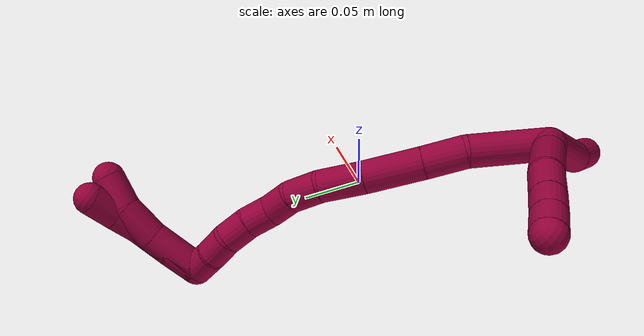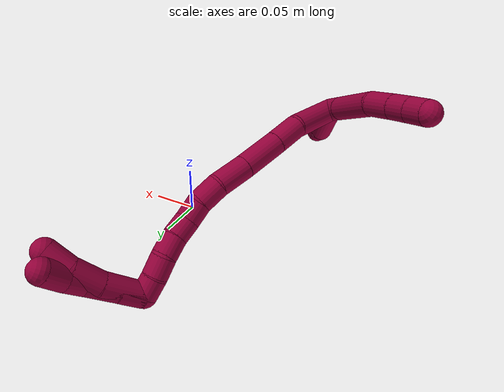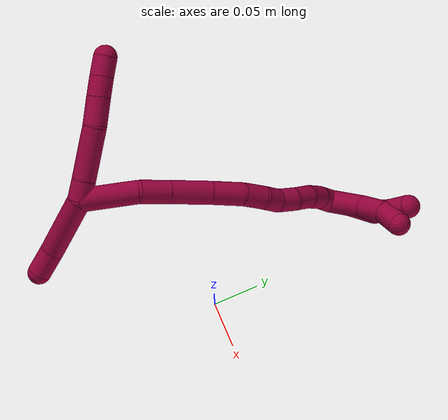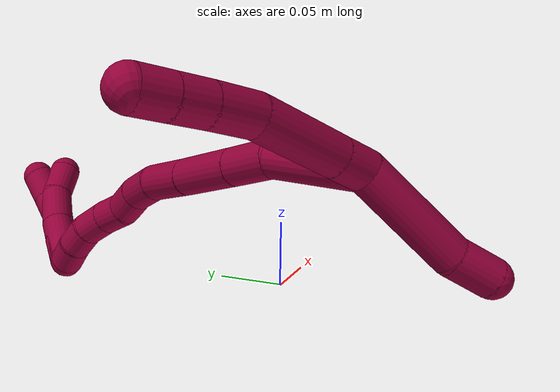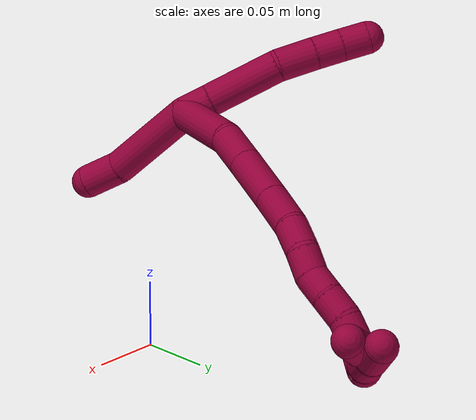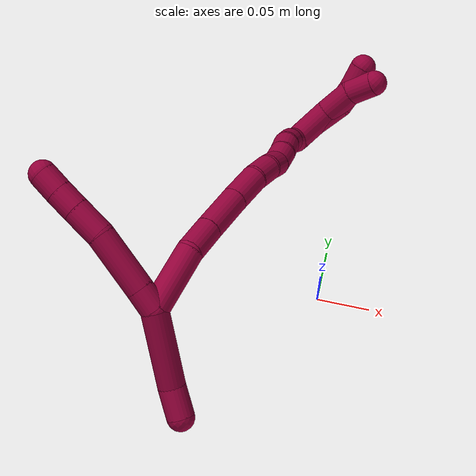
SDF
<sdf version="1.7">
 <world name="default">
  <model name="8">
   <static>0</static>
   <link name="8">
    <collision name="collision-cylinder-e_1_2_8">
     <pose>0.010682 -0.000133 -0.00217 3.08028 1.37004 3.06656</pose>
     <geometry><cylinder><radius>0.0125</radius><length>0.021802</length></cylinder></geometry>
     <surface>
      <friction><ode><mu>1.16</mu><mu2>1.16</mu2><slip1>0</slip1><slip2>0</slip2></ode></friction>
      <contact><ode><kp>1e+06</kp><kd>1</kd><max_vel>0</max_vel><min_depth>0.001</min_depth></ode></contact>
     </surface>
    </collision>
    <visual name="visual-cylinder-e_1_2_8">
     <pose>0.010682 -0.000133 -0.00217 3.08028 1.37004 3.06656</pose>
     <geometry><cylinder><radius>0.0125</radius><length>0.021802</length></cylinder></geometry>
     <material><ambient>0.584314 0 0.227451 1</ambient></material>
    </visual>
    <collision name="collision-cylinder-e_2_8_9">
     <pose>0.049019 -0.000939 -0.009499 3.01205 1.38482 2.9855</pose>
     <geometry><cylinder><radius>0.0125</radius><length>0.05628</length></cylinder></geometry>
     <surface>
      <friction><ode><mu>1.16</mu><mu2>1.16</mu2><slip1>0</slip1><slip2>0</slip2></ode></friction>
      <contact><ode><kp>1e+06</kp><kd>1</kd><max_vel>0</max_vel><min_depth>0.001</min_depth></ode></contact>
     </surface>
    </collision>
    <visual name="visual-cylinder-e_2_8_9">
     <pose>0.049019 -0.000939 -0.009499 3.01205 1.38482 2.9855</pose>
     <geometry><cylinder><radius>0.0125</radius><length>0.05628</length></cylinder></geometry>
     <material><ambient>0.584314 0 0.227451 1</ambient></material>
    </visual>
    <collision name="collision-cylinder-e_3_9_10">
     <pose>0.091424 -0.000273 -0.014467 -1.42828 1.47944 -1.33844</pose>
     <geometry><cylinder><radius>0.0125</radius><length>0.029624</length></cylinder></geometry>
     <surface>
      <friction><ode><mu>1.16</mu><mu2>1.16</mu2><slip1>0</slip1><slip2>0</slip2></ode></friction>
      <contact><ode><kp>1e+06</kp><kd>1</kd><max_vel>0</max_vel><min_depth>0.001</min_depth></ode></contact>
     </surface>
    </collision>
    <visual name="visual-cylinder-e_3_9_10">
     <pose>0.091424 -0.000273 -0.014467 -1.42828 1.47944 -1.33844</pose>
     <geometry><cylinder><radius>0.0125</radius><length>0.029624</length></cylinder></geometry>
     <material><ambient>0.584314 0 0.227451 1</ambient></material>
    </visual>
    <collision name="collision-cylinder-e_4_10_11">
     <pose>0.116764 0.002282 -0.014126 -1.44899 1.45551 -1.33536</pose>
     <geometry><cylinder><radius>0.0125</radius><length>0.021321</length></cylinder></geometry>
     <surface>
      <friction><ode><mu>1.16</mu><mu2>1.16</mu2><slip1>0</slip1><slip2>0</slip2></ode></friction>
      <contact><ode><kp>1e+06</kp><kd>1</kd><max_vel>0</max_vel><min_depth>0.001</min_depth></ode></contact>
     </surface>
    </collision>
    <visual name="visual-cylinder-e_4_10_11">
     <pose>0.116764 0.002282 -0.014126 -1.44899 1.45551 -1.33536</pose>
     <geometry><cylinder><radius>0.0125</radius><length>0.021321</length></cylinder></geometry>
     <material><ambient>0.584314 0 0.227451 1</ambient></material>
    </visual>
    <collision name="collision-cylinder-e_5_11_6">
     <pose>0.137749 0.004871 -0.014117 -1.67216 1.43885 -1.54001</pose>
     <geometry><cylinder><radius>0.0125</radius><length>0.020972</length></cylinder></geometry>
     <surface>
      <friction><ode><mu>1.16</mu><mu2>1.16</mu2><slip1>0</slip1><slip2>0</slip2></ode></friction>
      <contact><ode><kp>1e+06</kp><kd>1</kd><max_vel>0</max_vel><min_depth>0.001</min_depth></ode></contact>
     </surface>
    </collision>
    <visual name="visual-cylinder-e_5_11_6">
     <pose>0.137749 0.004871 -0.014117 -1.67216 1.43885 -1.54001</pose>
     <geometry><cylinder><radius>0.0125</radius><length>0.020972</length></cylinder></geometry>
     <material><ambient>0.584314 0 0.227451 1</ambient></material>
    </visual>
    <collision name="collision-cylinder-e_1_2_12">
     <pose>-0.028263 0.004897 0.021272 -0.226267 -0.913152 0.111501</pose>
     <geometry><cylinder><radius>0.0125</radius><length>0.071421</length></cylinder></geometry>
     <surface>
      <friction><ode><mu>1.16</mu><mu2>1.16</mu2><slip1>0</slip1><slip2>0</slip2></ode></friction>
      <contact><ode><kp>1e+06</kp><kd>1</kd><max_vel>0</max_vel><min_depth>0.001</min_depth></ode></contact>
     </surface>
    </collision>
    <visual name="visual-cylinder-e_1_2_12">
     <pose>-0.028263 0.004897 0.021272 -0.226267 -0.913152 0.111501</pose>
     <geometry><cylinder><radius>0.0125</radius><length>0.071421</length></cylinder></geometry>
     <material><ambient>0.584314 0 0.227451 1</ambient></material>
    </visual>
    <collision name="collision-cylinder-e_2_12_5">
     <pose>-0.068914 0.008677 0.049577 0.157482 -1.0491 -0.091248</pose>
     <geometry><cylinder><radius>0.0125</radius><length>0.028579</length></cylinder></geometry>
     <surface>
      <friction><ode><mu>1.16</mu><mu2>1.16</mu2><slip1>0</slip1><slip2>0</slip2></ode></friction>
      <contact><ode><kp>1e+06</kp><kd>1</kd><max_vel>0</max_vel><min_depth>0.001</min_depth></ode></contact>
     </surface>
    </collision>
    <visual name="visual-cylinder-e_2_12_5">
     <pose>-0.068914 0.008677 0.049577 0.157482 -1.0491 -0.091248</pose>
     <geometry><cylinder><radius>0.0125</radius><length>0.028579</length></cylinder></geometry>
     <material><ambient>0.584314 0 0.227451 1</ambient></material>
    </visual>
    <collision name="collision-cylinder-e_1_2_13">
     <pose>0.006861 0.019594 -0.023093 -2.43797 0.222786 -0.591555</pose>
     <geometry><cylinder><radius>0.0125</radius><length>0.062106</length></cylinder></geometry>
     <surface>
      <friction><ode><mu>1.16</mu><mu2>1.16</mu2><slip1>0</slip1><slip2>0</slip2></ode></friction>
      <contact><ode><kp>1e+06</kp><kd>1</kd><max_vel>0</max_vel><min_depth>0.001</min_depth></ode></contact>
     </surface>
    </collision>
    <visual name="visual-cylinder-e_1_2_13">
     <pose>0.006861 0.019594 -0.023093 -2.43797 0.222786 -0.591555</pose>
     <geometry><cylinder><radius>0.0125</radius><length>0.062106</length></cylinder></geometry>
     <material><ambient>0.584314 0 0.227451 1</ambient></material>
    </visual>
    <collision name="collision-cylinder-e_2_13_14">
     <pose>0.014811 0.052238 -0.055336 -2.18232 0.068192 -0.130964</pose>
     <geometry><cylinder><radius>0.0125</radius><length>0.03195</length></cylinder></geometry>
     <surface>
      <friction><ode><mu>1.16</mu><mu2>1.16</mu2><slip1>0</slip1><slip2>0</slip2></ode></friction>
      <contact><ode><kp>1e+06</kp><kd>1</kd><max_vel>0</max_vel><min_depth>0.001</min_depth></ode></contact>
     </surface>
    </collision>
    <visual name="visual-cylinder-e_2_13_14">
     <pose>0.014811 0.052238 -0.055336 -2.18232 0.068192 -0.130964</pose>
     <geometry><cylinder><radius>0.0125</radius><length>0.03195</length></cylinder></geometry>
     <material><ambient>0.584314 0 0.227451 1</ambient></material>
    </visual>
    <collision name="collision-cylinder-e_3_14_15">
     <pose>0.017088 0.083439 -0.077612 -2.19687 0.053025 -0.103711</pose>
     <geometry><cylinder><radius>0.0125</radius><length>0.044863</length></cylinder></geometry>
     <surface>
      <friction><ode><mu>1.16</mu><mu2>1.16</mu2><slip1>0</slip1><slip2>0</slip2></ode></friction>
      <contact><ode><kp>1e+06</kp><kd>1</kd><max_vel>0</max_vel><min_depth>0.001</min_depth></ode></contact>
     </surface>
    </collision>
    <visual name="visual-cylinder-e_3_14_15">
     <pose>0.017088 0.083439 -0.077612 -2.19687 0.053025 -0.103711</pose>
     <geometry><cylinder><radius>0.0125</radius><length>0.044863</length></cylinder></geometry>
     <material><ambient>0.584314 0 0.227451 1</ambient></material>
    </visual>
    <collision name="collision-cylinder-e_4_15_16">
     <pose>0.018775 0.115132 -0.101228 -2.22989 0.02908 -0.059298</pose>
     <geometry><cylinder><radius>0.0125</radius><length>0.034273</length></cylinder></geometry>
     <surface>
      <friction><ode><mu>1.16</mu><mu2>1.16</mu2><slip1>0</slip1><slip2>0</slip2></ode></friction>
      <contact><ode><kp>1e+06</kp><kd>1</kd><max_vel>0</max_vel><min_depth>0.001</min_depth></ode></contact>
     </surface>
    </collision>
    <visual name="visual-cylinder-e_4_15_16">
     <pose>0.018775 0.115132 -0.101228 -2.22989 0.02908 -0.059298</pose>
     <geometry><cylinder><radius>0.0125</radius><length>0.034273</length></cylinder></geometry>
     <material><ambient>0.584314 0 0.227451 1</ambient></material>
    </visual>
    <collision name="collision-cylinder-e_5_16_17">
     <pose>0.018255 0.139647 -0.11718 -2.03266 -0.082917 0.133771</pose>
     <geometry><cylinder><radius>0.0125</radius><length>0.0246</length></cylinder></geometry>
     <surface>
      <friction><ode><mu>1.16</mu><mu2>1.16</mu2><slip1>0</slip1><slip2>0</slip2></ode></friction>
      <contact><ode><kp>1e+06</kp><kd>1</kd><max_vel>0</max_vel><min_depth>0.001</min_depth></ode></contact>
     </surface>
    </collision>
    <visual name="visual-cylinder-e_5_16_17">
     <pose>0.018255 0.139647 -0.11718 -2.03266 -0.082917 0.133771</pose>
     <geometry><cylinder><radius>0.0125</radius><length>0.0246</length></cylinder></geometry>
     <material><ambient>0.584314 0 0.227451 1</ambient></material>
    </visual>
    <collision name="collision-cylinder-e_6_17_18">
     <pose>0.016043 0.160697 -0.124646 -1.76713 -0.115616 0.1408</pose>
     <geometry><cylinder><radius>0.0125</radius><length>0.020686</length></cylinder></geometry>
     <surface>
      <friction><ode><mu>1.16</mu><mu2>1.16</mu2><slip1>0</slip1><slip2>0</slip2></ode></friction>
      <contact><ode><kp>1e+06</kp><kd>1</kd><max_vel>0</max_vel><min_depth>0.001</min_depth></ode></contact>
     </surface>
    </collision>
    <visual name="visual-cylinder-e_6_17_18">
     <pose>0.016043 0.160697 -0.124646 -1.76713 -0.115616 0.1408</pose>
     <geometry><cylinder><radius>0.0125</radius><length>0.020686</length></cylinder></geometry>
     <material><ambient>0.584314 0 0.227451 1</ambient></material>
    </visual>
    <collision name="collision-cylinder-e_7_18_19">
     <pose>0.016258 0.180198 -0.130532 -1.96151 0.137306 -0.204657</pose>
     <geometry><cylinder><radius>0.0125</radius><length>0.020577</length></cylinder></geometry>
     <surface>
      <friction><ode><mu>1.16</mu><mu2>1.16</mu2><slip1>0</slip1><slip2>0</slip2></ode></friction>
      <contact><ode><kp>1e+06</kp><kd>1</kd><max_vel>0</max_vel><min_depth>0.001</min_depth></ode></contact>
     </surface>
    </collision>
    <visual name="visual-cylinder-e_7_18_19">
     <pose>0.016258 0.180198 -0.130532 -1.96151 0.137306 -0.204657</pose>
     <geometry><cylinder><radius>0.0125</radius><length>0.020577</length></cylinder></geometry>
     <material><ambient>0.584314 0 0.227451 1</ambient></material>
    </visual>
    <collision name="collision-cylinder-e_8_19_20">
     <pose>0.019466 0.199633 -0.136844 -1.80894 0.172936 -0.219603</pose>
     <geometry><cylinder><radius>0.0125</radius><length>0.020916</length></cylinder></geometry>
     <surface>
      <friction><ode><mu>1.16</mu><mu2>1.16</mu2><slip1>0</slip1><slip2>0</slip2></ode></friction>
      <contact><ode><kp>1e+06</kp><kd>1</kd><max_vel>0</max_vel><min_depth>0.001</min_depth></ode></contact>
     </surface>
    </collision>
    <visual name="visual-cylinder-e_8_19_20">
     <pose>0.019466 0.199633 -0.136844 -1.80894 0.172936 -0.219603</pose>
     <geometry><cylinder><radius>0.0125</radius><length>0.020916</length></cylinder></geometry>
     <material><ambient>0.584314 0 0.227451 1</ambient></material>
    </visual>
    <collision name="collision-cylinder-e_9_20_21">
     <pose>0.021135 0.219634 -0.13985 -1.62841 -0.012993 0.013764</pose>
     <geometry><cylinder><radius>0.0125</radius><length>0.020014</length></cylinder></geometry>
     <surface>
      <friction><ode><mu>1.16</mu><mu2>1.16</mu2><slip1>0</slip1><slip2>0</slip2></ode></friction>
      <contact><ode><kp>1e+06</kp><kd>1</kd><max_vel>0</max_vel><min_depth>0.001</min_depth></ode></contact>
     </surface>
    </collision>
    <visual name="visual-cylinder-e_9_20_21">
     <pose>0.021135 0.219634 -0.13985 -1.62841 -0.012993 0.013764</pose>
     <geometry><cylinder><radius>0.0125</radius><length>0.020014</length></cylinder></geometry>
     <material><ambient>0.584314 0 0.227451 1</ambient></material>
    </visual>
    <collision name="collision-cylinder-e_10_21_1">
     <pose>0.019302 0.239466 -0.14102 -1.63102 -0.171097 0.181668</pose>
     <geometry><cylinder><radius>0.0125</radius><length>0.020014</length></cylinder></geometry>
     <surface>
      <friction><ode><mu>1.16</mu><mu2>1.16</mu2><slip1>0</slip1><slip2>0</slip2></ode></friction>
      <contact><ode><kp>1e+06</kp><kd>1</kd><max_vel>0</max_vel><min_depth>0.001</min_depth></ode></contact>
     </surface>
    </collision>
    <visual name="visual-cylinder-e_10_21_1">
     <pose>0.019302 0.239466 -0.14102 -1.63102 -0.171097 0.181668</pose>
     <geometry><cylinder><radius>0.0125</radius><length>0.020014</length></cylinder></geometry>
     <material><ambient>0.584314 0 0.227451 1</ambient></material>
    </visual>
    <collision name="collision-cylinder-e_1_1_22">
     <pose>0.016829 0.249906 -0.153883 -3.093 -0.062515 1.82017</pose>
     <geometry><cylinder><radius>0.0125</radius><length>0.024616</length></cylinder></geometry>
     <surface>
      <friction><ode><mu>1.16</mu><mu2>1.16</mu2><slip1>0</slip1><slip2>0</slip2></ode></friction>
      <contact><ode><kp>1e+06</kp><kd>1</kd><max_vel>0</max_vel><min_depth>0.001</min_depth></ode></contact>
     </surface>
    </collision>
    <visual name="visual-cylinder-e_1_1_22">
     <pose>0.016829 0.249906 -0.153883 -3.093 -0.062515 1.82017</pose>
     <geometry><cylinder><radius>0.0125</radius><length>0.024616</length></cylinder></geometry>
     <material><ambient>0.584314 0 0.227451 1</ambient></material>
    </visual>
    <collision name="collision-cylinder-e_2_22_23">
     <pose>0.013388 0.251795 -0.181412 -3.05712 -0.172724 2.23335</pose>
     <geometry><cylinder><radius>0.0125</radius><length>0.031092</length></cylinder></geometry>
     <surface>
      <friction><ode><mu>1.16</mu><mu2>1.16</mu2><slip1>0</slip1><slip2>0</slip2></ode></friction>
      <contact><ode><kp>1e+06</kp><kd>1</kd><max_vel>0</max_vel><min_depth>0.001</min_depth></ode></contact>
     </surface>
    </collision>
    <visual name="visual-cylinder-e_2_22_23">
     <pose>0.013388 0.251795 -0.181412 -3.05712 -0.172724 2.23335</pose>
     <geometry><cylinder><radius>0.0125</radius><length>0.031092</length></cylinder></geometry>
     <material><ambient>0.584314 0 0.227451 1</ambient></material>
    </visual>
    <collision name="collision-cylinder-e_3_23_24">
     <pose>0.012279 0.253209 -0.206774 -3.1295 0.153427 -2.9846</pose>
     <geometry><cylinder><radius>0.0125</radius><length>0.020446</length></cylinder></geometry>
     <surface>
      <friction><ode><mu>1.16</mu><mu2>1.16</mu2><slip1>0</slip1><slip2>0</slip2></ode></friction>
      <contact><ode><kp>1e+06</kp><kd>1</kd><max_vel>0</max_vel><min_depth>0.001</min_depth></ode></contact>
     </surface>
    </collision>
    <visual name="visual-cylinder-e_3_23_24">
     <pose>0.012279 0.253209 -0.206774 -3.1295 0.153427 -2.9846</pose>
     <geometry><cylinder><radius>0.0125</radius><length>0.020446</length></cylinder></geometry>
     <material><ambient>0.584314 0 0.227451 1</ambient></material>
    </visual>
    <collision name="collision-cylinder-e_4_24_4">
     <pose>0.017103 0.252182 -0.228287 3.04122 0.277101 2.45011</pose>
     <geometry><cylinder><radius>0.0125</radius><length>0.023846</length></cylinder></geometry>
     <surface>
      <friction><ode><mu>1.16</mu><mu2>1.16</mu2><slip1>0</slip1><slip2>0</slip2></ode></friction>
      <contact><ode><kp>1e+06</kp><kd>1</kd><max_vel>0</max_vel><min_depth>0.001</min_depth></ode></contact>
     </surface>
    </collision>
    <visual name="visual-cylinder-e_4_24_4">
     <pose>0.017103 0.252182 -0.228287 3.04122 0.277101 2.45011</pose>
     <geometry><cylinder><radius>0.0125</radius><length>0.023846</length></cylinder></geometry>
     <material><ambient>0.584314 0 0.227451 1</ambient></material>
    </visual>
    <collision name="collision-cylinder-e_1_1_25">
     <pose>0.016269 0.249832 -0.162801 -3.1169 -0.06261 2.39056</pose>
     <geometry><cylinder><radius>0.0125</radius><length>0.042472</length></cylinder></geometry>
     <surface>
      <friction><ode><mu>1.16</mu><mu2>1.16</mu2><slip1>0</slip1><slip2>0</slip2></ode></friction>
      <contact><ode><kp>1e+06</kp><kd>1</kd><max_vel>0</max_vel><min_depth>0.001</min_depth></ode></contact>
     </surface>
    </collision>
    <visual name="visual-cylinder-e_1_1_25">
     <pose>0.016269 0.249832 -0.162801 -3.1169 -0.06261 2.39056</pose>
     <geometry><cylinder><radius>0.0125</radius><length>0.042472</length></cylinder></geometry>
     <material><ambient>0.584314 0 0.227451 1</ambient></material>
    </visual>
    <collision name="collision-cylinder-e_2_25_26">
     <pose>0.013305 0.247992 -0.199131 2.98671 -0.106286 -1.20185</pose>
     <geometry><cylinder><radius>0.0125</radius><length>0.030823</length></cylinder></geometry>
     <surface>
      <friction><ode><mu>1.16</mu><mu2>1.16</mu2><slip1>0</slip1><slip2>0</slip2></ode></friction>
      <contact><ode><kp>1e+06</kp><kd>1</kd><max_vel>0</max_vel><min_depth>0.001</min_depth></ode></contact>
     </surface>
    </collision>
    <visual name="visual-cylinder-e_2_25_26">
     <pose>0.013305 0.247992 -0.199131 2.98671 -0.106286 -1.20185</pose>
     <geometry><cylinder><radius>0.0125</radius><length>0.030823</length></cylinder></geometry>
     <material><ambient>0.584314 0 0.227451 1</ambient></material>
    </visual>
    <collision name="collision-cylinder-e_3_26_3">
     <pose>0.006612 0.241728 -0.225997 2.82051 -0.388523 -1.76427</pose>
     <geometry><cylinder><radius>0.0125</radius><length>0.026704</length></cylinder></geometry>
     <surface>
      <friction><ode><mu>1.16</mu><mu2>1.16</mu2><slip1>0</slip1><slip2>0</slip2></ode></friction>
      <contact><ode><kp>1e+06</kp><kd>1</kd><max_vel>0</max_vel><min_depth>0.001</min_depth></ode></contact>
     </surface>
    </collision>
    <visual name="visual-cylinder-e_3_26_3">
     <pose>0.006612 0.241728 -0.225997 2.82051 -0.388523 -1.76427</pose>
     <geometry><cylinder><radius>0.0125</radius><length>0.026704</length></cylinder></geometry>
     <material><ambient>0.584314 0 0.227451 1</ambient></material>
    </visual>
    <collision name="collision-sphere-3">
     <pose>0.001554 0.237828 -0.237723 0 -0 0</pose>
     <geometry><sphere><radius>0.0125</radius></sphere></geometry>
     <surface>
      <friction><ode><mu>1.16</mu><mu2>1.16</mu2><slip1>0</slip1><slip2>0</slip2></ode></friction>
      <contact><ode><kp>1e+06</kp><kd>1</kd><max_vel>0</max_vel><min_depth>0.001</min_depth></ode></contact>
     </surface>
    </collision>
    <visual name="visual-sphere-3">
     <pose>0.001554 0.237828 -0.237723 0 -0 0</pose>
     <geometry><sphere><radius>0.0125</radius></sphere></geometry>
     <material><ambient>0.584314 0 0.227451 1</ambient></material>
    </visual>
    <collision name="collision-sphere-26">
     <pose>0.01167 0.245627 -0.214272 0 -0 0</pose>
     <geometry><sphere><radius>0.0125</radius></sphere></geometry>
     <surface>
      <friction><ode><mu>1.16</mu><mu2>1.16</mu2><slip1>0</slip1><slip2>0</slip2></ode></friction>
      <contact><ode><kp>1e+06</kp><kd>1</kd><max_vel>0</max_vel><min_depth>0.001</min_depth></ode></contact>
     </surface>
    </collision>
    <visual name="visual-sphere-26">
     <pose>0.01167 0.245627 -0.214272 0 -0 0</pose>
     <geometry><sphere><radius>0.0125</radius></sphere></geometry>
     <material><ambient>0.584314 0 0.227451 1</ambient></material>
    </visual>
    <collision name="collision-sphere-25">
     <pose>0.01494 0.250356 -0.183989 0 -0 0</pose>
     <geometry><sphere><radius>0.0125</radius></sphere></geometry>
     <surface>
      <friction><ode><mu>1.16</mu><mu2>1.16</mu2><slip1>0</slip1><slip2>0</slip2></ode></friction>
      <contact><ode><kp>1e+06</kp><kd>1</kd><max_vel>0</max_vel><min_depth>0.001</min_depth></ode></contact>
     </surface>
    </collision>
    <visual name="visual-sphere-25">
     <pose>0.01494 0.250356 -0.183989 0 -0 0</pose>
     <geometry><sphere><radius>0.0125</radius></sphere></geometry>
     <material><ambient>0.584314 0 0.227451 1</ambient></material>
    </visual>
    <collision name="collision-sphere-4">
     <pose>0.020365 0.251033 -0.239697 0 -0 0</pose>
     <geometry><sphere><radius>0.0125</radius></sphere></geometry>
     <surface>
      <friction><ode><mu>1.16</mu><mu2>1.16</mu2><slip1>0</slip1><slip2>0</slip2></ode></friction>
      <contact><ode><kp>1e+06</kp><kd>1</kd><max_vel>0</max_vel><min_depth>0.001</min_depth></ode></contact>
     </surface>
    </collision>
    <visual name="visual-sphere-4">
     <pose>0.020365 0.251033 -0.239697 0 -0 0</pose>
     <geometry><sphere><radius>0.0125</radius></sphere></geometry>
     <material><ambient>0.584314 0 0.227451 1</ambient></material>
    </visual>
    <collision name="collision-sphere-24">
     <pose>0.013841 0.253331 -0.216877 0 -0 0</pose>
     <geometry><sphere><radius>0.0125</radius></sphere></geometry>
     <surface>
      <friction><ode><mu>1.16</mu><mu2>1.16</mu2><slip1>0</slip1><slip2>0</slip2></ode></friction>
      <contact><ode><kp>1e+06</kp><kd>1</kd><max_vel>0</max_vel><min_depth>0.001</min_depth></ode></contact>
     </surface>
    </collision>
    <visual name="visual-sphere-24">
     <pose>0.013841 0.253331 -0.216877 0 -0 0</pose>
     <geometry><sphere><radius>0.0125</radius></sphere></geometry>
     <material><ambient>0.584314 0 0.227451 1</ambient></material>
    </visual>
    <collision name="collision-sphere-23">
     <pose>0.010716 0.253087 -0.196672 0 -0 0</pose>
     <geometry><sphere><radius>0.0125</radius></sphere></geometry>
     <surface>
      <friction><ode><mu>1.16</mu><mu2>1.16</mu2><slip1>0</slip1><slip2>0</slip2></ode></friction>
      <contact><ode><kp>1e+06</kp><kd>1</kd><max_vel>0</max_vel><min_depth>0.001</min_depth></ode></contact>
     </surface>
    </collision>
    <visual name="visual-sphere-23">
     <pose>0.010716 0.253087 -0.196672 0 -0 0</pose>
     <geometry><sphere><radius>0.0125</radius></sphere></geometry>
     <material><ambient>0.584314 0 0.227451 1</ambient></material>
    </visual>
    <collision name="collision-sphere-22">
     <pose>0.01606 0.250503 -0.166152 0 -0 0</pose>
     <geometry><sphere><radius>0.0125</radius></sphere></geometry>
     <surface>
      <friction><ode><mu>1.16</mu><mu2>1.16</mu2><slip1>0</slip1><slip2>0</slip2></ode></friction>
      <contact><ode><kp>1e+06</kp><kd>1</kd><max_vel>0</max_vel><min_depth>0.001</min_depth></ode></contact>
     </surface>
    </collision>
    <visual name="visual-sphere-22">
     <pose>0.01606 0.250503 -0.166152 0 -0 0</pose>
     <geometry><sphere><radius>0.0125</radius></sphere></geometry>
     <material><ambient>0.584314 0 0.227451 1</ambient></material>
    </visual>
    <collision name="collision-sphere-1">
     <pose>0.017598 0.249309 -0.141613 0 -0 0</pose>
     <geometry><sphere><radius>0.0125</radius></sphere></geometry>
     <surface>
      <friction><ode><mu>1.16</mu><mu2>1.16</mu2><slip1>0</slip1><slip2>0</slip2></ode></friction>
      <contact><ode><kp>1e+06</kp><kd>1</kd><max_vel>0</max_vel><min_depth>0.001</min_depth></ode></contact>
     </surface>
    </collision>
    <visual name="visual-sphere-1">
     <pose>0.017598 0.249309 -0.141613 0 -0 0</pose>
     <geometry><sphere><radius>0.0125</radius></sphere></geometry>
     <material><ambient>0.584314 0 0.227451 1</ambient></material>
    </visual>
    <collision name="collision-sphere-21">
     <pose>0.021005 0.229623 -0.140426 0 -0 0</pose>
     <geometry><sphere><radius>0.0125</radius></sphere></geometry>
     <surface>
      <friction><ode><mu>1.16</mu><mu2>1.16</mu2><slip1>0</slip1><slip2>0</slip2></ode></friction>
      <contact><ode><kp>1e+06</kp><kd>1</kd><max_vel>0</max_vel><min_depth>0.001</min_depth></ode></contact>
     </surface>
    </collision>
    <visual name="visual-sphere-21">
     <pose>0.021005 0.229623 -0.140426 0 -0 0</pose>
     <geometry><sphere><radius>0.0125</radius></sphere></geometry>
     <material><ambient>0.584314 0 0.227451 1</ambient></material>
    </visual>
    <collision name="collision-sphere-6">
     <pose>0.148144 0.006244 -0.014256 0 -0 0</pose>
     <geometry><sphere><radius>0.0125</radius></sphere></geometry>
     <surface>
      <friction><ode><mu>1.16</mu><mu2>1.16</mu2><slip1>0</slip1><slip2>0</slip2></ode></friction>
      <contact><ode><kp>1e+06</kp><kd>1</kd><max_vel>0</max_vel><min_depth>0.001</min_depth></ode></contact>
     </surface>
    </collision>
    <visual name="visual-sphere-6">
     <pose>0.148144 0.006244 -0.014256 0 -0 0</pose>
     <geometry><sphere><radius>0.0125</radius></sphere></geometry>
     <material><ambient>0.584314 0 0.227451 1</ambient></material>
    </visual>
    <collision name="collision-sphere-11">
     <pose>0.127354 0.003499 -0.013977 0 -0 0</pose>
     <geometry><sphere><radius>0.0125</radius></sphere></geometry>
     <surface>
      <friction><ode><mu>1.16</mu><mu2>1.16</mu2><slip1>0</slip1><slip2>0</slip2></ode></friction>
      <contact><ode><kp>1e+06</kp><kd>1</kd><max_vel>0</max_vel><min_depth>0.001</min_depth></ode></contact>
     </surface>
    </collision>
    <visual name="visual-sphere-11">
     <pose>0.127354 0.003499 -0.013977 0 -0 0</pose>
     <geometry><sphere><radius>0.0125</radius></sphere></geometry>
     <material><ambient>0.584314 0 0.227451 1</ambient></material>
    </visual>
    <collision name="collision-sphere-10">
     <pose>0.106174 0.001064 -0.014275 0 -0 0</pose>
     <geometry><sphere><radius>0.0125</radius></sphere></geometry>
     <surface>
      <friction><ode><mu>1.16</mu><mu2>1.16</mu2><slip1>0</slip1><slip2>0</slip2></ode></friction>
      <contact><ode><kp>1e+06</kp><kd>1</kd><max_vel>0</max_vel><min_depth>0.001</min_depth></ode></contact>
     </surface>
    </collision>
    <visual name="visual-sphere-10">
     <pose>0.106174 0.001064 -0.014275 0 -0 0</pose>
     <geometry><sphere><radius>0.0125</radius></sphere></geometry>
     <material><ambient>0.584314 0 0.227451 1</ambient></material>
    </visual>
    <collision name="collision-sphere-9">
     <pose>0.076674 -0.001611 -0.014659 0 -0 0</pose>
     <geometry><sphere><radius>0.0125</radius></sphere></geometry>
     <surface>
      <friction><ode><mu>1.16</mu><mu2>1.16</mu2><slip1>0</slip1><slip2>0</slip2></ode></friction>
      <contact><ode><kp>1e+06</kp><kd>1</kd><max_vel>0</max_vel><min_depth>0.001</min_depth></ode></contact>
     </surface>
    </collision>
    <visual name="visual-sphere-9">
     <pose>0.076674 -0.001611 -0.014659 0 -0 0</pose>
     <geometry><sphere><radius>0.0125</radius></sphere></geometry>
     <material><ambient>0.584314 0 0.227451 1</ambient></material>
    </visual>
    <collision name="collision-sphere-2">
     <geometry><sphere><radius>0.0125</radius></sphere></geometry>
     <surface>
      <friction><ode><mu>1.16</mu><mu2>1.16</mu2><slip1>0</slip1><slip2>0</slip2></ode></friction>
      <contact><ode><kp>1e+06</kp><kd>1</kd><max_vel>0</max_vel><min_depth>0.001</min_depth></ode></contact>
     </surface>
    </collision>
    <visual name="visual-sphere-2">
     <geometry><sphere><radius>0.0125</radius></sphere></geometry>
     <material><ambient>0.584314 0 0.227451 1</ambient></material>
    </visual>
    <collision name="collision-sphere-19">
     <pose>0.017666 0.189621 -0.134413 0 -0 0</pose>
     <geometry><sphere><radius>0.0125</radius></sphere></geometry>
     <surface>
      <friction><ode><mu>1.16</mu><mu2>1.16</mu2><slip1>0</slip1><slip2>0</slip2></ode></friction>
      <contact><ode><kp>1e+06</kp><kd>1</kd><max_vel>0</max_vel><min_depth>0.001</min_depth></ode></contact>
     </surface>
    </collision>
    <visual name="visual-sphere-19">
     <pose>0.017666 0.189621 -0.134413 0 -0 0</pose>
     <geometry><sphere><radius>0.0125</radius></sphere></geometry>
     <material><ambient>0.584314 0 0.227451 1</ambient></material>
    </visual>
    <collision name="collision-sphere-8">
     <pose>0.021364 -0.000266 -0.004339 0 -0 0</pose>
     <geometry><sphere><radius>0.0125</radius></sphere></geometry>
     <surface>
      <friction><ode><mu>1.16</mu><mu2>1.16</mu2><slip1>0</slip1><slip2>0</slip2></ode></friction>
      <contact><ode><kp>1e+06</kp><kd>1</kd><max_vel>0</max_vel><min_depth>0.001</min_depth></ode></contact>
     </surface>
    </collision>
    <visual name="visual-sphere-8">
     <pose>0.021364 -0.000266 -0.004339 0 -0 0</pose>
     <geometry><sphere><radius>0.0125</radius></sphere></geometry>
     <material><ambient>0.584314 0 0.227451 1</ambient></material>
    </visual>
    <collision name="collision-sphere-12">
     <pose>-0.056525 0.009794 0.042544 0 -0 0</pose>
     <geometry><sphere><radius>0.0125</radius></sphere></geometry>
     <surface>
      <friction><ode><mu>1.16</mu><mu2>1.16</mu2><slip1>0</slip1><slip2>0</slip2></ode></friction>
      <contact><ode><kp>1e+06</kp><kd>1</kd><max_vel>0</max_vel><min_depth>0.001</min_depth></ode></contact>
     </surface>
    </collision>
    <visual name="visual-sphere-12">
     <pose>-0.056525 0.009794 0.042544 0 -0 0</pose>
     <geometry><sphere><radius>0.0125</radius></sphere></geometry>
     <material><ambient>0.584314 0 0.227451 1</ambient></material>
    </visual>
    <collision name="collision-sphere-5">
     <pose>-0.081302 0.00756 0.05661 0 -0 0</pose>
     <geometry><sphere><radius>0.0125</radius></sphere></geometry>
     <surface>
      <friction><ode><mu>1.16</mu><mu2>1.16</mu2><slip1>0</slip1><slip2>0</slip2></ode></friction>
      <contact><ode><kp>1e+06</kp><kd>1</kd><max_vel>0</max_vel><min_depth>0.001</min_depth></ode></contact>
     </surface>
    </collision>
    <visual name="visual-sphere-5">
     <pose>-0.081302 0.00756 0.05661 0 -0 0</pose>
     <geometry><sphere><radius>0.0125</radius></sphere></geometry>
     <material><ambient>0.584314 0 0.227451 1</ambient></material>
    </visual>
    <collision name="collision-sphere-13">
     <pose>0.013722 0.039189 -0.046186 0 -0 0</pose>
     <geometry><sphere><radius>0.0125</radius></sphere></geometry>
     <surface>
      <friction><ode><mu>1.16</mu><mu2>1.16</mu2><slip1>0</slip1><slip2>0</slip2></ode></friction>
      <contact><ode><kp>1e+06</kp><kd>1</kd><max_vel>0</max_vel><min_depth>0.001</min_depth></ode></contact>
     </surface>
    </collision>
    <visual name="visual-sphere-13">
     <pose>0.013722 0.039189 -0.046186 0 -0 0</pose>
     <geometry><sphere><radius>0.0125</radius></sphere></geometry>
     <material><ambient>0.584314 0 0.227451 1</ambient></material>
    </visual>
    <collision name="collision-sphere-14">
     <pose>0.015899 0.065288 -0.064486 0 -0 0</pose>
     <geometry><sphere><radius>0.0125</radius></sphere></geometry>
     <surface>
      <friction><ode><mu>1.16</mu><mu2>1.16</mu2><slip1>0</slip1><slip2>0</slip2></ode></friction>
      <contact><ode><kp>1e+06</kp><kd>1</kd><max_vel>0</max_vel><min_depth>0.001</min_depth></ode></contact>
     </surface>
    </collision>
    <visual name="visual-sphere-14">
     <pose>0.015899 0.065288 -0.064486 0 -0 0</pose>
     <geometry><sphere><radius>0.0125</radius></sphere></geometry>
     <material><ambient>0.584314 0 0.227451 1</ambient></material>
    </visual>
    <collision name="collision-sphere-15">
     <pose>0.018277 0.101591 -0.090738 0 -0 0</pose>
     <geometry><sphere><radius>0.0125</radius></sphere></geometry>
     <surface>
      <friction><ode><mu>1.16</mu><mu2>1.16</mu2><slip1>0</slip1><slip2>0</slip2></ode></friction>
      <contact><ode><kp>1e+06</kp><kd>1</kd><max_vel>0</max_vel><min_depth>0.001</min_depth></ode></contact>
     </surface>
    </collision>
    <visual name="visual-sphere-15">
     <pose>0.018277 0.101591 -0.090738 0 -0 0</pose>
     <geometry><sphere><radius>0.0125</radius></sphere></geometry>
     <material><ambient>0.584314 0 0.227451 1</ambient></material>
    </visual>
    <collision name="collision-sphere-16">
     <pose>0.019274 0.128674 -0.111718 0 -0 0</pose>
     <geometry><sphere><radius>0.0125</radius></sphere></geometry>
     <surface>
      <friction><ode><mu>1.16</mu><mu2>1.16</mu2><slip1>0</slip1><slip2>0</slip2></ode></friction>
      <contact><ode><kp>1e+06</kp><kd>1</kd><max_vel>0</max_vel><min_depth>0.001</min_depth></ode></contact>
     </surface>
    </collision>
    <visual name="visual-sphere-16">
     <pose>0.019274 0.128674 -0.111718 0 -0 0</pose>
     <geometry><sphere><radius>0.0125</radius></sphere></geometry>
     <material><ambient>0.584314 0 0.227451 1</ambient></material>
    </visual>
    <collision name="collision-sphere-17">
     <pose>0.017236 0.15062 -0.122642 0 -0 0</pose>
     <geometry><sphere><radius>0.0125</radius></sphere></geometry>
     <surface>
      <friction><ode><mu>1.16</mu><mu2>1.16</mu2><slip1>0</slip1><slip2>0</slip2></ode></friction>
      <contact><ode><kp>1e+06</kp><kd>1</kd><max_vel>0</max_vel><min_depth>0.001</min_depth></ode></contact>
     </surface>
    </collision>
    <visual name="visual-sphere-17">
     <pose>0.017236 0.15062 -0.122642 0 -0 0</pose>
     <geometry><sphere><radius>0.0125</radius></sphere></geometry>
     <material><ambient>0.584314 0 0.227451 1</ambient></material>
    </visual>
    <collision name="collision-sphere-18">
     <pose>0.01485 0.170774 -0.12665 0 -0 0</pose>
     <geometry><sphere><radius>0.0125</radius></sphere></geometry>
     <surface>
      <friction><ode><mu>1.16</mu><mu2>1.16</mu2><slip1>0</slip1><slip2>0</slip2></ode></friction>
      <contact><ode><kp>1e+06</kp><kd>1</kd><max_vel>0</max_vel><min_depth>0.001</min_depth></ode></contact>
     </surface>
    </collision>
    <visual name="visual-sphere-18">
     <pose>0.01485 0.170774 -0.12665 0 -0 0</pose>
     <geometry><sphere><radius>0.0125</radius></sphere></geometry>
     <material><ambient>0.584314 0 0.227451 1</ambient></material>
    </visual>
    <collision name="collision-sphere-20">
     <pose>0.021265 0.209644 -0.139274 0 -0 0</pose>
     <geometry><sphere><radius>0.0125</radius></sphere></geometry>
     <surface>
      <friction><ode><mu>1.16</mu><mu2>1.16</mu2><slip1>0</slip1><slip2>0</slip2></ode></friction>
      <contact><ode><kp>1e+06</kp><kd>1</kd><max_vel>0</max_vel><min_depth>0.001</min_depth></ode></contact>
     </surface>
    </collision>
    <visual name="visual-sphere-20">
     <pose>0.021265 0.209644 -0.139274 0 -0 0</pose>
     <geometry><sphere><radius>0.0125</radius></sphere></geometry>
     <material><ambient>0.584314 0 0.227451 1</ambient></material>
    </visual>
    <inertial>
     <pose>0.019332 0.113297 -0.084858 0 -0 0</pose>
     <mass>0.75</mass>
     <inertia><ixx>5.2e-05</ixx><ixy>0</ixy><ixz>0</ixz><iyy>6.1e-05</iyy><iyz>0</iyz><izz>-6.4e-05</izz></inertia>
    </inertial>
   </link>
   <pose>-0.130344 -0.094199 0.118919 -2.20606 -0.324544 2.64547</pose>
  </model>
 </world>
</sdf>
